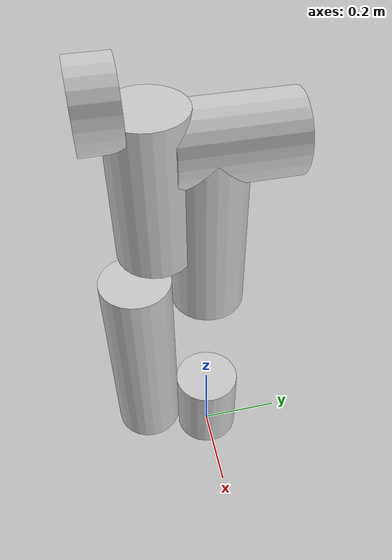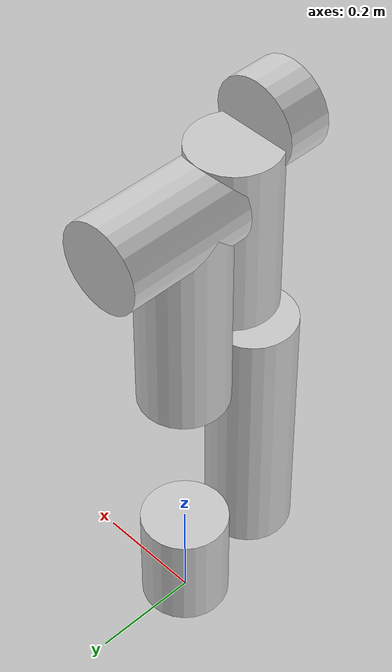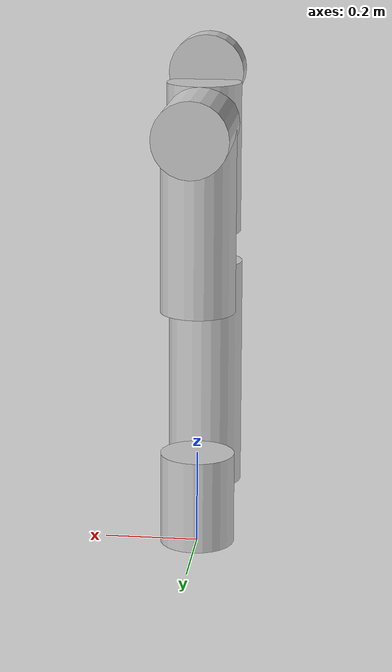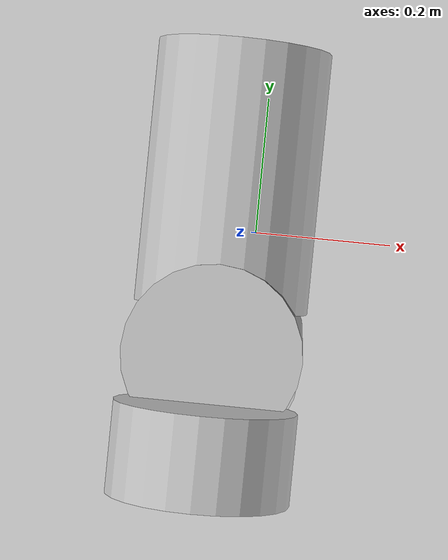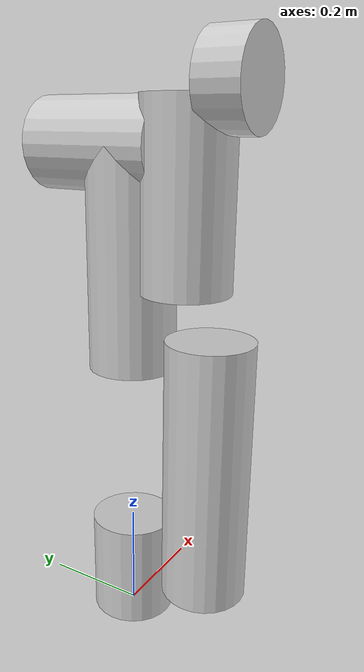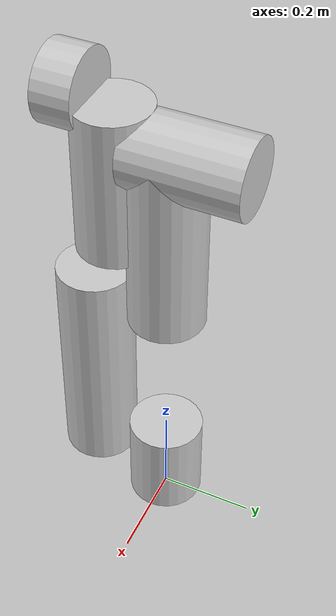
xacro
<?xml version="1.0"?>
<robot xmlns:xacro="http://www.ros.org/wiki/xacro" name="our_ur5">

<xacro:property name="radius" value="0.08" />

<!-- Links -->

	<link name="base_link"></link>

	<joint name="base_joint" type="revolute">
		<parent link="base_link"/>
		<child link="base"/>
		<axis xyz="0.0 0.0 1"/>
		<limit lower="-${2*pi}" upper="${2*pi}" effort="100.0" velocity="3.15"/>
		<origin rpy="0 0 0" xyz="0 0 0"/>
	</joint>

	<link name="base">
		<visual>
			<origin xyz="0 0 0.1" rpy="0 0 0"/>
			<geometry>
				<cylinder radius="${radius}" length="0.2"/>
			</geometry>
			<material name="gray">
				<color rgba="0.8 0.8 0.8 1.0"/>
			</material>
		</visual>
	</link>

	<joint name="base_shoulder" type="revolute">
		<parent link="base"/>
		<child link="shoulder"/>
		<axis xyz="0.0 1 0.0"/>
		<limit lower="-${2*pi}" upper="${2*pi}" effort="100.0" velocity="3.15"/>
		<origin rpy="0 0 0" xyz="0 -${radius*2} 0.0892"/>
	</joint>

	<link name="shoulder">
		<visual>
			<origin xyz="0 0 ${0.5/2}" rpy="0 0 0"/>
			<geometry>
				<cylinder radius="${radius}" length="0.5"/>
			</geometry>
			<material name="gray">
				<color rgba="0.8 0.8 0.8 1.0"/>
			</material>
		</visual>
	</link>

	<joint name="shoulder_elbow" type="revolute">
		<parent link="shoulder"/>
		<child link="elbow"/>
		<axis xyz="0.0 1 0.0"/>
		<limit lower="-${pi}" upper="${pi}" effort="100.0" velocity="3.15"/>
		<origin rpy="0 0 0" xyz="0 ${radius*2} 0.425"/>
	</joint>

	<link name="elbow">
		<visual>
			<origin xyz="0 0 ${0.392/2}" rpy="0 0 0"/>
			<geometry>
				<cylinder radius="${radius}" length="0.392"/>
			</geometry>
			<material name="gray">
				<color rgba="0.8 0.8 0.8 1.0"/>
			</material>
		</visual>
	</link>

	<joint name="elbow_wrist1" type="revolute">
		<parent link="elbow"/>
		<child link="wrist1"/>
		<axis xyz="0.0 1 0.0"/>
		<limit lower="-${2*pi}" upper="${2*pi}" effort="100" velocity="3.2"/>
		<origin rpy="0 0 0" xyz="0 0 0.392"/>
	</joint>

	<link name="wrist1">
		<visual>
			<origin xyz="0 0.05 0" rpy="${pi/2} 0 0"/>
			<geometry>
				<cylinder radius="${radius}" length="${radius*3}"/>
			</geometry>
			<material name="gray">
				<color rgba="0.8 0.8 0.8 1.0"/>
			</material>
		</visual>
	</link>

	<joint name="wrist1_wrist2" type="revolute">
		<parent link="wrist1"/>
		<child link="wrist2"/>
		<axis xyz="0.0 0.0 1"/>
			<limit lower="-${2*pi}" upper="${2*pi}" effort="100" velocity="3.2"/>
		<origin rpy="0 0 0" xyz="0 -0.1093 0"/>
	</joint>

	<link name="wrist2">
		<visual>
			<origin xyz="0 0 -${radius}" rpy="0 0 0"/>
			<geometry>
				<cylinder radius="${radius}" length="${radius*4}"/>
			</geometry>
			<material name="gray">
				<color rgba="0.8 0.8 0.8 1.0"/>
			</material>
		</visual>
	</link>

	<joint name="wrist2_wrist3" type="revolute">
		<parent link="wrist2"/>
		<child link="wrist3"/>
		<axis xyz="0.0 0 1"/>
		<limit lower="-${2*pi}" upper="${2*pi}" effort="100" velocity="3.2"/>
		<origin rpy="${pi/2} 0 0" xyz="0 -0.0825 0.09475"/>
	</joint>

	<link name="wrist3">
		<visual>
			<origin xyz="0 0 0" rpy="0 0 0"/>
			<geometry>
				<cylinder radius="${radius}" length="${radius}"/>
			</geometry>
			<material name="gray">
				<color rgba="0.8 0.8 0.8 1.0"/>
			</material>
		</visual>
	</link>

</robot>
